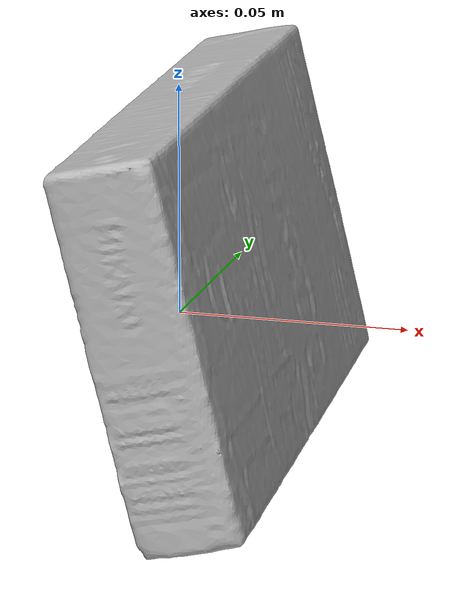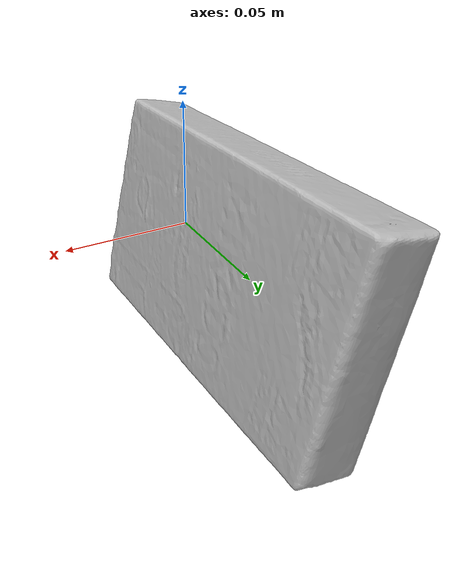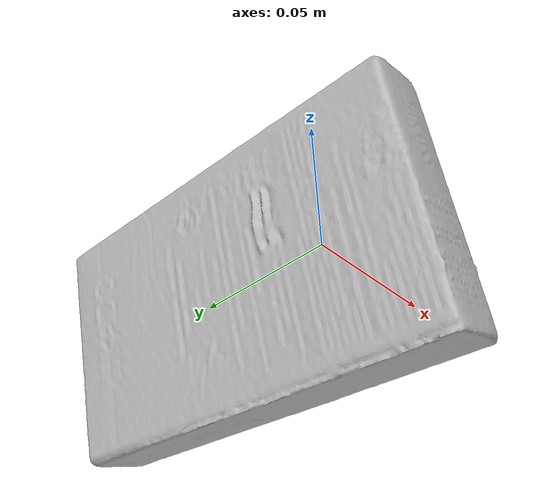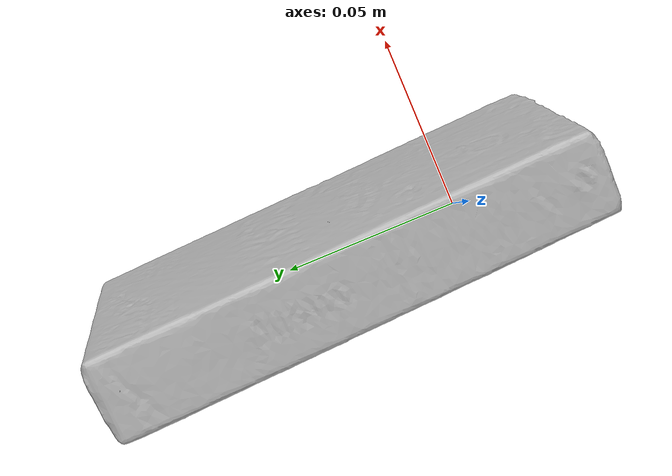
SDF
<?xml version='1.0'?>
<sdf version="1.4">
  <model name="ChocSticks">
    <static>false</static>
    <link name="link">
      <inertial>
        <pose>-0.00020634297805465857 0.03582384033655638 7.991598015745024e-05 1.5641400595771466 0.2389438410852547 -3.0989933530856377</pose>
        <mass>0.030410104016893837</mass>
        <inertia>
          <ixx>7.011274189656456e-05</ixx>
          <ixy>2.8712961668321228e-21</ixy>
          <ixz>-2.3210343730411447e-21</ixz>
          <iyy>5.408003876873678e-05</iyy>
          <iyz>1.2338257661002961e-20</iyz>
          <izz>1.9175204098835003e-05</izz>
        </inertia>
      </inertial>
      <collision name="collision">
        <geometry>
          <mesh>
            <!-- Use a downsampled mesh for collisions -->
            <uri>model:///ChocSticks/ChocSticks_250_collision.obj</uri>
	        </mesh>
        </geometry>
        <surface>
      </surface>
      </collision>
      <visual name="visual">
        <geometry>
          <mesh>
            <uri>model:///ChocSticks/ChocSticks_25k_tex.obj</uri>
	        </mesh>
        </geometry>
        <material>
          <script>
            <uri>model:///ChocSticks/ChocSticks.material</uri>
            <name>ChocSticks</name>
          </script>
        </material>
      </visual>
    </link>
  </model>
</sdf>
